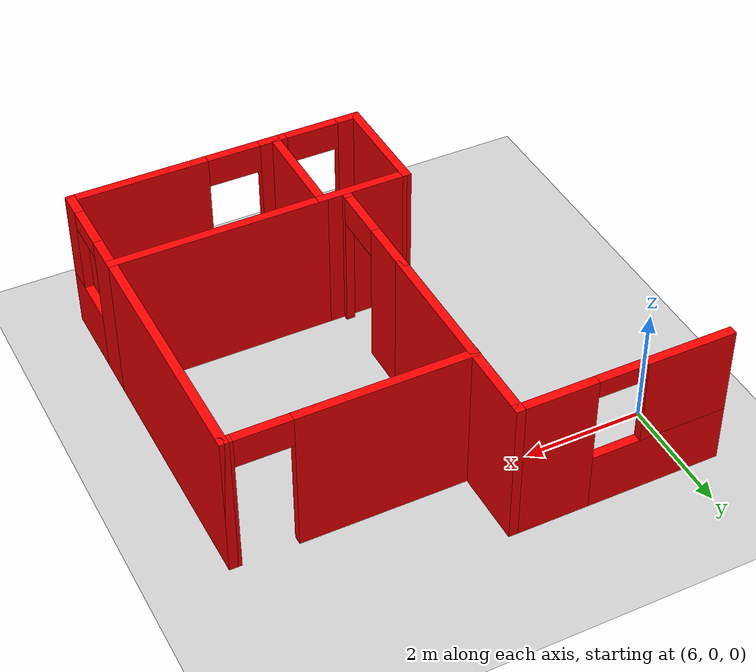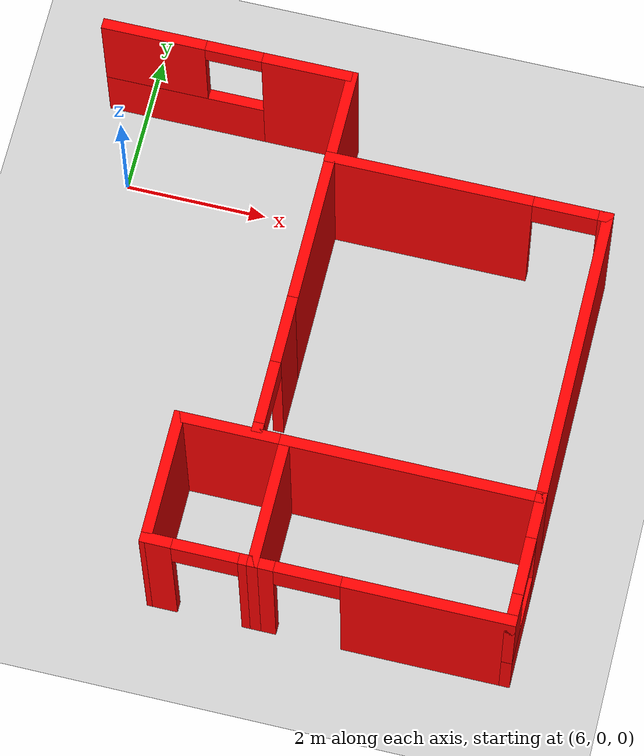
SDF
<sdf version="1.6">
 <world name="default">
  <model name="ground_plane">
   <static>1</static>
   <link name="link">
    <collision name="collision">
     <geometry><plane><normal>0 0 1</normal><size>100 100</size></plane></geometry>
     <surface><friction><ode><mu>100</mu><mu2>50</mu2></ode></friction></surface>
    </collision>
    <visual name="visual">
     <cast_shadows>0</cast_shadows>
     <geometry><plane><normal>0 0 1</normal><size>100 100</size></plane></geometry>
     <material>
      <script><uri>file://media/materials/scripts/gazebo.material</uri><name>Gazebo/Grey</name></script>
     </material>
    </visual>
   </link>
  </model>
  <model name="1floorHouse">
   <link name="Wall_323">
    <pose>4.71621 4.113 0 0 -0 1.5708</pose>
    <visual name="Wall_323_Visual">
     <pose>0 0 1.25 0 -0 0</pose>
     <geometry><box><size>3.6 0.15 2.5</size></box></geometry>
     <material>
      <script><uri>file://media/materials/scripts/gazebo.material</uri><name>Gazebo/Grey</name></script>
      <ambient>1 0 0 1</ambient>
      <diffuse>0.7 0.7 0.7 1</diffuse>
      <specular>0.01 0.01 0.01 1</specular>
      <emissive>0 0 0 1</emissive>
     </material>
    </visual>
    <collision name="Wall_323_Collision">
     <pose>0 0 1.25 0 -0 0</pose>
     <geometry><box><size>3.6 0.15 2.5</size></box></geometry>
     <surface>
      <friction>
       <ode><mu>1</mu><mu2>1</mu2><fdir1>0 0 0</fdir1><slip1>0</slip1><slip2>0</slip2></ode>
       <torsional>
        <coefficient>1</coefficient>
        <patch_radius>0</patch_radius>
        <surface_radius>0</surface_radius>
        <use_patch_radius>1</use_patch_radius>
        <ode><slip>0</slip></ode>
       </torsional>
      </friction>
      <bounce><restitution_coefficient>0</restitution_coefficient><threshold>1e+06</threshold></bounce>
      <contact>
       <collide_without_contact>0</collide_without_contact>
       <collide_without_contact_bitmask>1</collide_without_contact_bitmask>
       <collide_bitmask>1</collide_bitmask>
       <ode>
        <soft_cfm>0</soft_cfm>
        <soft_erp>0.2</soft_erp>
        <kp>1e+13</kp>
        <kd>1</kd>
        <max_vel>0.01</max_vel>
        <min_depth>0</min_depth>
       </ode>
       <bullet>
        <split_impulse>1</split_impulse>
        <split_impulse_penetration_threshold>-0.01</split_impulse_penetration_threshold>
        <soft_cfm>0</soft_cfm>
        <soft_erp>0.2</soft_erp>
        <kp>1e+13</kp>
        <kd>1</kd>
       </bullet>
      </contact>
     </surface>
    </collision>
   </link>
   <link name="Wall_324">
    <pose>2.9912 5.838 0 0 -0 3.14159</pose>
    <visual name="Wall_324_Visual_0">
     <pose>-1.13431 0 1.25 0 -0 0</pose>
     <geometry><box><size>1.33138 0.15 2.5</size></box></geometry>
     <material>
      <script><uri>file://media/materials/scripts/gazebo.material</uri><name>Gazebo/Grey</name></script>
      <ambient>1 0 0 1</ambient>
      <diffuse>0.7 0.7 0.7 1</diffuse>
      <specular>0.01 0.01 0.01 1</specular>
      <emissive>0 0 0 1</emissive>
     </material>
    </visual>
    <visual name="Wall_324_Visual_1">
     <pose>0.665691 0 0.5 0 -0 0</pose>
     <geometry><box><size>2.26862 0.15 1</size></box></geometry>
     <material>
      <script><uri>file://media/materials/scripts/gazebo.material</uri><name>Gazebo/Grey</name></script>
      <ambient>1 0 0 1</ambient>
      <diffuse>0.7 0.7 0.7 1</diffuse>
      <specular>0.01 0.01 0.01 1</specular>
      <emissive>0 0 0 1</emissive>
     </material>
    </visual>
    <visual name="Wall_324_Visual_3">
     <pose>-0.068619 0 2.35 0 -0 0</pose>
     <geometry><box><size>0.8 0.15 0.3</size></box></geometry>
     <material>
      <script><uri>file://media/materials/scripts/gazebo.material</uri><name>Gazebo/Grey</name></script>
      <ambient>1 0 0 1</ambient>
      <diffuse>0.7 0.7 0.7 1</diffuse>
      <specular>0.01 0.01 0.01 1</specular>
      <emissive>0 0 0 1</emissive>
     </material>
    </visual>
    <visual name="Wall_324_Visual_2">
     <pose>1.06569 0 1.75 0 -0 0</pose>
     <geometry><box><size>1.46862 0.15 1.5</size></box></geometry>
     <material>
      <script><uri>file://media/materials/scripts/gazebo.material</uri><name>Gazebo/Grey</name></script>
      <ambient>1 0 0 1</ambient>
      <diffuse>0.7 0.7 0.7 1</diffuse>
      <specular>0.01 0.01 0.01 1</specular>
      <emissive>0 0 0 1</emissive>
     </material>
    </visual>
    <collision name="Wall_324_Collision_0">
     <pose>-1.13431 0 1.25 0 -0 0</pose>
     <geometry><box><size>1.33138 0.15 2.5</size></box></geometry>
     <surface>
      <friction>
       <ode><mu>1</mu><mu2>1</mu2><fdir1>0 0 0</fdir1><slip1>0</slip1><slip2>0</slip2></ode>
       <torsional>
        <coefficient>1</coefficient>
        <patch_radius>0</patch_radius>
        <surface_radius>0</surface_radius>
        <use_patch_radius>1</use_patch_radius>
        <ode><slip>0</slip></ode>
       </torsional>
      </friction>
      <bounce><restitution_coefficient>0</restitution_coefficient><threshold>1e+06</threshold></bounce>
      <contact>
       <collide_without_contact>0</collide_without_contact>
       <collide_without_contact_bitmask>1</collide_without_contact_bitmask>
       <collide_bitmask>1</collide_bitmask>
       <ode>
        <soft_cfm>0</soft_cfm>
        <soft_erp>0.2</soft_erp>
        <kp>1e+13</kp>
        <kd>1</kd>
        <max_vel>0.01</max_vel>
        <min_depth>0</min_depth>
       </ode>
       <bullet>
        <split_impulse>1</split_impulse>
        <split_impulse_penetration_threshold>-0.01</split_impulse_penetration_threshold>
        <soft_cfm>0</soft_cfm>
        <soft_erp>0.2</soft_erp>
        <kp>1e+13</kp>
        <kd>1</kd>
       </bullet>
      </contact>
     </surface>
    </collision>
    <collision name="Wall_324_Collision_1">
     <pose>0.665691 0 0.5 0 -0 0</pose>
     <geometry><box><size>2.26862 0.15 1</size></box></geometry>
     <surface>
      <friction>
       <ode><mu>1</mu><mu2>1</mu2><fdir1>0 0 0</fdir1><slip1>0</slip1><slip2>0</slip2></ode>
       <torsional>
        <coefficient>1</coefficient>
        <patch_radius>0</patch_radius>
        <surface_radius>0</surface_radius>
        <use_patch_radius>1</use_patch_radius>
        <ode><slip>0</slip></ode>
       </torsional>
      </friction>
      <bounce><restitution_coefficient>0</restitution_coefficient><threshold>1e+06</threshold></bounce>
      <contact>
       <collide_without_contact>0</collide_without_contact>
       <collide_without_contact_bitmask>1</collide_without_contact_bitmask>
       <collide_bitmask>1</collide_bitmask>
       <ode>
        <soft_cfm>0</soft_cfm>
        <soft_erp>0.2</soft_erp>
        <kp>1e+13</kp>
        <kd>1</kd>
        <max_vel>0.01</max_vel>
        <min_depth>0</min_depth>
       </ode>
       <bullet>
        <split_impulse>1</split_impulse>
        <split_impulse_penetration_threshold>-0.01</split_impulse_penetration_threshold>
        <soft_cfm>0</soft_cfm>
        <soft_erp>0.2</soft_erp>
        <kp>1e+13</kp>
        <kd>1</kd>
       </bullet>
      </contact>
     </surface>
    </collision>
    <collision name="Wall_324_Collision_2">
     <pose>1.06569 0 1.75 0 -0 0</pose>
     <geometry><box><size>1.46862 0.15 1.5</size></box></geometry>
     <surface>
      <friction>
       <ode><mu>1</mu><mu2>1</mu2><fdir1>0 0 0</fdir1><slip1>0</slip1><slip2>0</slip2></ode>
       <torsional>
        <coefficient>1</coefficient>
        <patch_radius>0</patch_radius>
        <surface_radius>0</surface_radius>
        <use_patch_radius>1</use_patch_radius>
        <ode><slip>0</slip></ode>
       </torsional>
      </friction>
      <bounce><restitution_coefficient>0</restitution_coefficient><threshold>1e+06</threshold></bounce>
      <contact>
       <collide_without_contact>0</collide_without_contact>
       <collide_without_contact_bitmask>1</collide_without_contact_bitmask>
       <collide_bitmask>1</collide_bitmask>
       <ode>
        <soft_cfm>0</soft_cfm>
        <soft_erp>0.2</soft_erp>
        <kp>1e+13</kp>
        <kd>1</kd>
        <max_vel>0.01</max_vel>
        <min_depth>0</min_depth>
       </ode>
       <bullet>
        <split_impulse>1</split_impulse>
        <split_impulse_penetration_threshold>-0.01</split_impulse_penetration_threshold>
        <soft_cfm>0</soft_cfm>
        <soft_erp>0.2</soft_erp>
        <kp>1e+13</kp>
        <kd>1</kd>
       </bullet>
      </contact>
     </surface>
    </collision>
    <collision name="Wall_324_Collision_3">
     <pose>-0.068619 0 2.35 0 -0 0</pose>
     <geometry><box><size>0.8 0.15 0.3</size></box></geometry>
     <surface>
      <friction>
       <ode><mu>1</mu><mu2>1</mu2><fdir1>0 0 0</fdir1><slip1>0</slip1><slip2>0</slip2></ode>
       <torsional>
        <coefficient>1</coefficient>
        <patch_radius>0</patch_radius>
        <surface_radius>0</surface_radius>
        <use_patch_radius>1</use_patch_radius>
        <ode><slip>0</slip></ode>
       </torsional>
      </friction>
      <bounce><restitution_coefficient>0</restitution_coefficient><threshold>1e+06</threshold></bounce>
      <contact>
       <collide_without_contact>0</collide_without_contact>
       <collide_without_contact_bitmask>1</collide_without_contact_bitmask>
       <collide_bitmask>1</collide_bitmask>
       <ode>
        <soft_cfm>0</soft_cfm>
        <soft_erp>0.2</soft_erp>
        <kp>1e+13</kp>
        <kd>1</kd>
        <max_vel>0.01</max_vel>
        <min_depth>0</min_depth>
       </ode>
       <bullet>
        <split_impulse>1</split_impulse>
        <split_impulse_penetration_threshold>-0.01</split_impulse_penetration_threshold>
        <soft_cfm>0</soft_cfm>
        <soft_erp>0.2</soft_erp>
        <kp>1e+13</kp>
        <kd>1</kd>
       </bullet>
      </contact>
     </surface>
    </collision>
   </link>
   <link name="Wall_326">
    <pose>6.6372 4.588 0 0 -0 0</pose>
    <visual name="Wall_326_Visual_0">
     <pose>-0.551177 0 1.25 0 -0 0</pose>
     <geometry><box><size>2.89765 0.15 2.5</size></box></geometry>
     <material>
      <script><uri>file://media/materials/scripts/gazebo.material</uri><name>Gazebo/Grey</name></script>
      <ambient>1 0 0 1</ambient>
      <diffuse>0.7 0.7 0.7 1</diffuse>
      <specular>0.01 0.01 0.01 1</specular>
      <emissive>0 0 0 1</emissive>
     </material>
    </visual>
    <visual name="Wall_326_Visual_1">
     <pose>1.89882 0 1.25 0 -0 0</pose>
     <geometry><box><size>0.202354 0.15 2.5</size></box></geometry>
     <material>
      <script><uri>file://media/materials/scripts/gazebo.material</uri><name>Gazebo/Grey</name></script>
      <ambient>1 0 0 1</ambient>
      <diffuse>0.7 0.7 0.7 1</diffuse>
      <specular>0.01 0.01 0.01 1</specular>
      <emissive>0 0 0 1</emissive>
     </material>
    </visual>
    <visual name="Wall_326_Visual_2">
     <pose>1.34765 0 2.25 0 -0 0</pose>
     <geometry><box><size>0.9 0.15 0.5</size></box></geometry>
     <material>
      <script><uri>file://media/materials/scripts/gazebo.material</uri><name>Gazebo/Grey</name></script>
      <ambient>1 0 0 1</ambient>
      <diffuse>0.7 0.7 0.7 1</diffuse>
      <specular>0.01 0.01 0.01 1</specular>
      <emissive>0 0 0 1</emissive>
     </material>
    </visual>
    <collision name="Wall_326_Collision_0">
     <pose>-0.551177 0 1.25 0 -0 0</pose>
     <geometry><box><size>2.89765 0.15 2.5</size></box></geometry>
     <surface>
      <friction>
       <ode><mu>1</mu><mu2>1</mu2><fdir1>0 0 0</fdir1><slip1>0</slip1><slip2>0</slip2></ode>
       <torsional>
        <coefficient>1</coefficient>
        <patch_radius>0</patch_radius>
        <surface_radius>0</surface_radius>
        <use_patch_radius>1</use_patch_radius>
        <ode><slip>0</slip></ode>
       </torsional>
      </friction>
      <bounce><restitution_coefficient>0</restitution_coefficient><threshold>1e+06</threshold></bounce>
      <contact>
       <collide_without_contact>0</collide_without_contact>
       <collide_without_contact_bitmask>1</collide_without_contact_bitmask>
       <collide_bitmask>1</collide_bitmask>
       <ode>
        <soft_cfm>0</soft_cfm>
        <soft_erp>0.2</soft_erp>
        <kp>1e+13</kp>
        <kd>1</kd>
        <max_vel>0.01</max_vel>
        <min_depth>0</min_depth>
       </ode>
       <bullet>
        <split_impulse>1</split_impulse>
        <split_impulse_penetration_threshold>-0.01</split_impulse_penetration_threshold>
        <soft_cfm>0</soft_cfm>
        <soft_erp>0.2</soft_erp>
        <kp>1e+13</kp>
        <kd>1</kd>
       </bullet>
      </contact>
     </surface>
    </collision>
    <collision name="Wall_326_Collision_2">
     <pose>1.34765 0 2.25 0 -0 0</pose>
     <geometry><box><size>0.9 0.15 0.5</size></box></geometry>
     <surface>
      <friction>
       <ode><mu>1</mu><mu2>1</mu2><fdir1>0 0 0</fdir1><slip1>0</slip1><slip2>0</slip2></ode>
       <torsional>
        <coefficient>1</coefficient>
        <patch_radius>0</patch_radius>
        <surface_radius>0</surface_radius>
        <use_patch_radius>1</use_patch_radius>
        <ode><slip>0</slip></ode>
       </torsional>
      </friction>
      <bounce><restitution_coefficient>0</restitution_coefficient><threshold>1e+06</threshold></bounce>
      <contact>
       <collide_without_contact>0</collide_without_contact>
       <collide_without_contact_bitmask>1</collide_without_contact_bitmask>
       <collide_bitmask>1</collide_bitmask>
       <ode>
        <soft_cfm>0</soft_cfm>
        <soft_erp>0.2</soft_erp>
        <kp>1e+13</kp>
        <kd>1</kd>
        <max_vel>0.01</max_vel>
        <min_depth>0</min_depth>
       </ode>
       <bullet>
        <split_impulse>1</split_impulse>
        <split_impulse_penetration_threshold>-0.01</split_impulse_penetration_threshold>
        <soft_cfm>0</soft_cfm>
        <soft_erp>0.2</soft_erp>
        <kp>1e+13</kp>
        <kd>1</kd>
       </bullet>
      </contact>
     </surface>
    </collision>
    <collision name="Wall_326_Collision_1">
     <pose>1.89882 0 1.25 0 -0 0</pose>
     <geometry><box><size>0.202354 0.15 2.5</size></box></geometry>
     <surface>
      <friction>
       <ode><mu>1</mu><mu2>1</mu2><fdir1>0 0 0</fdir1><slip1>0</slip1><slip2>0</slip2></ode>
       <torsional>
        <coefficient>1</coefficient>
        <patch_radius>0</patch_radius>
        <surface_radius>0</surface_radius>
        <use_patch_radius>1</use_patch_radius>
        <ode><slip>0</slip></ode>
       </torsional>
      </friction>
      <bounce><restitution_coefficient>0</restitution_coefficient><threshold>1e+06</threshold></bounce>
      <contact>
       <collide_without_contact>0</collide_without_contact>
       <collide_without_contact_bitmask>1</collide_without_contact_bitmask>
       <collide_bitmask>1</collide_bitmask>
       <ode>
        <soft_cfm>0</soft_cfm>
        <soft_erp>0.2</soft_erp>
        <kp>1e+13</kp>
        <kd>1</kd>
        <max_vel>0.01</max_vel>
        <min_depth>0</min_depth>
       </ode>
       <bullet>
        <split_impulse>1</split_impulse>
        <split_impulse_penetration_threshold>-0.01</split_impulse_penetration_threshold>
        <soft_cfm>0</soft_cfm>
        <soft_erp>0.2</soft_erp>
        <kp>1e+13</kp>
        <kd>1</kd>
       </bullet>
      </contact>
     </surface>
    </collision>
   </link>
   <link name="Wall_327">
    <pose>8.56221 2.513 0 0 0 -1.5708</pose>
    <visual name="Wall_327_Visual">
     <pose>0 0 1.25 0 -0 0</pose>
     <geometry><box><size>4.3 0.15 2.5</size></box></geometry>
     <material>
      <script><uri>file://media/materials/scripts/gazebo.material</uri><name>Gazebo/Grey</name></script>
      <ambient>1 0 0 1</ambient>
      <diffuse>0.7 0.7 0.7 1</diffuse>
      <specular>0.01 0.01 0.01 1</specular>
      <emissive>0 0 0 1</emissive>
     </material>
    </visual>
    <collision name="Wall_327_Collision">
     <pose>0 0 1.25 0 -0 0</pose>
     <geometry><box><size>4.3 0.15 2.5</size></box></geometry>
     <surface>
      <friction>
       <ode><mu>1</mu><mu2>1</mu2><fdir1>0 0 0</fdir1><slip1>0</slip1><slip2>0</slip2></ode>
       <torsional>
        <coefficient>1</coefficient>
        <patch_radius>0</patch_radius>
        <surface_radius>0</surface_radius>
        <use_patch_radius>1</use_patch_radius>
        <ode><slip>0</slip></ode>
       </torsional>
      </friction>
      <bounce><restitution_coefficient>0</restitution_coefficient><threshold>1e+06</threshold></bounce>
      <contact>
       <collide_without_contact>0</collide_without_contact>
       <collide_without_contact_bitmask>1</collide_without_contact_bitmask>
       <collide_bitmask>1</collide_bitmask>
       <ode>
        <soft_cfm>0</soft_cfm>
        <soft_erp>0.2</soft_erp>
        <kp>1e+13</kp>
        <kd>1</kd>
        <max_vel>0.01</max_vel>
        <min_depth>0</min_depth>
       </ode>
       <bullet>
        <split_impulse>1</split_impulse>
        <split_impulse_penetration_threshold>-0.01</split_impulse_penetration_threshold>
        <soft_cfm>0</soft_cfm>
        <soft_erp>0.2</soft_erp>
        <kp>1e+13</kp>
        <kd>1</kd>
       </bullet>
      </contact>
     </surface>
    </collision>
   </link>
   <link name="Wall_328">
    <pose>6.8372 0.437996 0 0 -0 3.14159</pose>
    <visual name="Wall_328_Visual">
     <pose>0 0 1.25 0 -0 0</pose>
     <geometry><box><size>3.6 0.15 2.5</size></box></geometry>
     <material>
      <script><uri>file://media/materials/scripts/gazebo.material</uri><name>Gazebo/Grey</name></script>
      <ambient>1 0 0 1</ambient>
      <diffuse>0.7 0.7 0.7 1</diffuse>
      <specular>0.01 0.01 0.01 1</specular>
      <emissive>0 0 0 1</emissive>
     </material>
    </visual>
    <collision name="Wall_328_Collision">
     <pose>0 0 1.25 0 -0 0</pose>
     <geometry><box><size>3.6 0.15 2.5</size></box></geometry>
     <surface>
      <friction>
       <ode><mu>1</mu><mu2>1</mu2><fdir1>0 0 0</fdir1><slip1>0</slip1><slip2>0</slip2></ode>
       <torsional>
        <coefficient>1</coefficient>
        <patch_radius>0</patch_radius>
        <surface_radius>0</surface_radius>
        <use_patch_radius>1</use_patch_radius>
        <ode><slip>0</slip></ode>
       </torsional>
      </friction>
      <bounce><restitution_coefficient>0</restitution_coefficient><threshold>1e+06</threshold></bounce>
      <contact>
       <collide_without_contact>0</collide_without_contact>
       <collide_without_contact_bitmask>1</collide_without_contact_bitmask>
       <collide_bitmask>1</collide_bitmask>
       <ode>
        <soft_cfm>0</soft_cfm>
        <soft_erp>0.2</soft_erp>
        <kp>1e+13</kp>
        <kd>1</kd>
        <max_vel>0.01</max_vel>
        <min_depth>0</min_depth>
       </ode>
       <bullet>
        <split_impulse>1</split_impulse>
        <split_impulse_penetration_threshold>-0.01</split_impulse_penetration_threshold>
        <soft_cfm>0</soft_cfm>
        <soft_erp>0.2</soft_erp>
        <kp>1e+13</kp>
        <kd>1</kd>
       </bullet>
      </contact>
     </surface>
    </collision>
   </link>
   <link name="Wall_329">
    <pose>4.3872 0.437996 0 0 -0 3.14159</pose>
    <visual name="Wall_329_Visual">
     <pose>0 0 1.25 0 -0 0</pose>
     <geometry><box><size>1.6 0.15 2.5</size></box></geometry>
     <material>
      <script><uri>file://media/materials/scripts/gazebo.material</uri><name>Gazebo/Grey</name></script>
      <ambient>1 0 0 1</ambient>
      <diffuse>0.7 0.7 0.7 1</diffuse>
      <specular>0.01 0.01 0.01 1</specular>
      <emissive>0 0 0 1</emissive>
     </material>
    </visual>
    <collision name="Wall_329_Collision">
     <pose>0 0 1.25 0 -0 0</pose>
     <geometry><box><size>1.6 0.15 2.5</size></box></geometry>
     <surface>
      <friction>
       <ode><mu>1</mu><mu2>1</mu2><fdir1>0 0 0</fdir1><slip1>0</slip1><slip2>0</slip2></ode>
       <torsional>
        <coefficient>1</coefficient>
        <patch_radius>0</patch_radius>
        <surface_radius>0</surface_radius>
        <use_patch_radius>1</use_patch_radius>
        <ode><slip>0</slip></ode>
       </torsional>
      </friction>
      <bounce><restitution_coefficient>0</restitution_coefficient><threshold>1e+06</threshold></bounce>
      <contact>
       <collide_without_contact>0</collide_without_contact>
       <collide_without_contact_bitmask>1</collide_without_contact_bitmask>
       <collide_bitmask>1</collide_bitmask>
       <ode>
        <soft_cfm>0</soft_cfm>
        <soft_erp>0.2</soft_erp>
        <kp>1e+13</kp>
        <kd>1</kd>
        <max_vel>0.01</max_vel>
        <min_depth>0</min_depth>
       </ode>
       <bullet>
        <split_impulse>1</split_impulse>
        <split_impulse_penetration_threshold>-0.01</split_impulse_penetration_threshold>
        <soft_cfm>0</soft_cfm>
        <soft_erp>0.2</soft_erp>
        <kp>1e+13</kp>
        <kd>1</kd>
       </bullet>
      </contact>
     </surface>
    </collision>
   </link>
   <link name="Wall_330">
    <pose>4.71621 1.463 0 0 0 -1.5708</pose>
    <visual name="Wall_330_Visual_0">
     <pose>-0.517454 0 1.25 0 -0 0</pose>
     <geometry><box><size>0.965091 0.15 2.5</size></box></geometry>
     <material>
      <script><uri>file://media/materials/scripts/gazebo.material</uri><name>Gazebo/Grey</name></script>
      <ambient>1 0 0 1</ambient>
      <diffuse>0.7 0.7 0.7 1</diffuse>
      <specular>0.01 0.01 0.01 1</specular>
      <emissive>0 0 0 1</emissive>
     </material>
    </visual>
    <visual name="Wall_330_Visual_1">
     <pose>0.932546 0 1.25 0 -0 0</pose>
     <geometry><box><size>0.134909 0.15 2.5</size></box></geometry>
     <material>
      <script><uri>file://media/materials/scripts/gazebo.material</uri><name>Gazebo/Grey</name></script>
      <ambient>1 0 0 1</ambient>
      <diffuse>0.7 0.7 0.7 1</diffuse>
      <specular>0.01 0.01 0.01 1</specular>
      <emissive>0 0 0 1</emissive>
     </material>
    </visual>
    <visual name="Wall_330_Visual_2">
     <pose>0.415091 0 2.25 0 -0 0</pose>
     <geometry><box><size>0.9 0.15 0.5</size></box></geometry>
     <material>
      <script><uri>file://media/materials/scripts/gazebo.material</uri><name>Gazebo/Grey</name></script>
      <ambient>1 0 0 1</ambient>
      <diffuse>0.7 0.7 0.7 1</diffuse>
      <specular>0.01 0.01 0.01 1</specular>
      <emissive>0 0 0 1</emissive>
     </material>
    </visual>
    <collision name="Wall_330_Collision_1">
     <pose>0.932546 0 1.25 0 -0 0</pose>
     <geometry><box><size>0.134909 0.15 2.5</size></box></geometry>
     <surface>
      <friction>
       <ode><mu>1</mu><mu2>1</mu2><fdir1>0 0 0</fdir1><slip1>0</slip1><slip2>0</slip2></ode>
       <torsional>
        <coefficient>1</coefficient>
        <patch_radius>0</patch_radius>
        <surface_radius>0</surface_radius>
        <use_patch_radius>1</use_patch_radius>
        <ode><slip>0</slip></ode>
       </torsional>
      </friction>
      <bounce><restitution_coefficient>0</restitution_coefficient><threshold>1e+06</threshold></bounce>
      <contact>
       <collide_without_contact>0</collide_without_contact>
       <collide_without_contact_bitmask>1</collide_without_contact_bitmask>
       <collide_bitmask>1</collide_bitmask>
       <ode>
        <soft_cfm>0</soft_cfm>
        <soft_erp>0.2</soft_erp>
        <kp>1e+13</kp>
        <kd>1</kd>
        <max_vel>0.01</max_vel>
        <min_depth>0</min_depth>
       </ode>
       <bullet>
        <split_impulse>1</split_impulse>
        <split_impulse_penetration_threshold>-0.01</split_impulse_penetration_threshold>
        <soft_cfm>0</soft_cfm>
        <soft_erp>0.2</soft_erp>
        <kp>1e+13</kp>
        <kd>1</kd>
       </bullet>
      </contact>
     </surface>
    </collision>
    <collision name="Wall_330_Collision_0">
     <pose>-0.517454 0 1.25 0 -0 0</pose>
     <geometry><box><size>0.965091 0.15 2.5</size></box></geometry>
     <surface>
      <friction>
       <ode><mu>1</mu><mu2>1</mu2><fdir1>0 0 0</fdir1><slip1>0</slip1><slip2>0</slip2></ode>
       <torsional>
        <coefficient>1</coefficient>
        <patch_radius>0</patch_radius>
        <surface_radius>0</surface_radius>
        <use_patch_radius>1</use_patch_radius>
        <ode><slip>0</slip></ode>
       </torsional>
      </friction>
      <bounce><restitution_coefficient>0</restitution_coefficient><threshold>1e+06</threshold></bounce>
      <contact>
       <collide_without_contact>0</collide_without_contact>
       <collide_without_contact_bitmask>1</collide_without_contact_bitmask>
       <collide_bitmask>1</collide_bitmask>
       <ode>
        <soft_cfm>0</soft_cfm>
        <soft_erp>0.2</soft_erp>
        <kp>1e+13</kp>
        <kd>1</kd>
        <max_vel>0.01</max_vel>
        <min_depth>0</min_depth>
       </ode>
       <bullet>
        <split_impulse>1</split_impulse>
        <split_impulse_penetration_threshold>-0.01</split_impulse_penetration_threshold>
        <soft_cfm>0</soft_cfm>
        <soft_erp>0.2</soft_erp>
        <kp>1e+13</kp>
        <kd>1</kd>
       </bullet>
      </contact>
     </surface>
    </collision>
    <collision name="Wall_330_Collision_2">
     <pose>0.415091 0 2.25 0 -0 0</pose>
     <geometry><box><size>0.9 0.15 0.5</size></box></geometry>
     <surface>
      <friction>
       <ode><mu>1</mu><mu2>1</mu2><fdir1>0 0 0</fdir1><slip1>0</slip1><slip2>0</slip2></ode>
       <torsional>
        <coefficient>1</coefficient>
        <patch_radius>0</patch_radius>
        <surface_radius>0</surface_radius>
        <use_patch_radius>1</use_patch_radius>
        <ode><slip>0</slip></ode>
       </torsional>
      </friction>
      <bounce><restitution_coefficient>0</restitution_coefficient><threshold>1e+06</threshold></bounce>
      <contact>
       <collide_without_contact>0</collide_without_contact>
       <collide_without_contact_bitmask>1</collide_without_contact_bitmask>
       <collide_bitmask>1</collide_bitmask>
       <ode>
        <soft_cfm>0</soft_cfm>
        <soft_erp>0.2</soft_erp>
        <kp>1e+13</kp>
        <kd>1</kd>
        <max_vel>0.01</max_vel>
        <min_depth>0</min_depth>
       </ode>
       <bullet>
        <split_impulse>1</split_impulse>
        <split_impulse_penetration_threshold>-0.01</split_impulse_penetration_threshold>
        <soft_cfm>0</soft_cfm>
        <soft_erp>0.2</soft_erp>
        <kp>1e+13</kp>
        <kd>1</kd>
       </bullet>
      </contact>
     </surface>
    </collision>
   </link>
   <link name="Wall_331">
    <pose>8.56221 -0.437004 0 0 0 -1.5708</pose>
    <visual name="Wall_331_Visual_0">
     <pose>-0.622308 0 1.25 0 -0 0</pose>
     <geometry><box><size>0.655384 0.15 2.5</size></box></geometry>
     <material>
      <script><uri>file://media/materials/scripts/gazebo.material</uri><name>Gazebo/Grey</name></script>
      <ambient>1 0 0 1</ambient>
      <diffuse>0.7 0.7 0.7 1</diffuse>
      <specular>0.01 0.01 0.01 1</specular>
      <emissive>0 0 0 1</emissive>
     </material>
    </visual>
    <visual name="Wall_331_Visual_1">
     <pose>0.327692 0 0.5 0 -0 0</pose>
     <geometry><box><size>1.24462 0.15 1</size></box></geometry>
     <material>
      <script><uri>file://media/materials/scripts/gazebo.material</uri><name>Gazebo/Grey</name></script>
      <ambient>1 0 0 1</ambient>
      <diffuse>0.7 0.7 0.7 1</diffuse>
      <specular>0.01 0.01 0.01 1</specular>
      <emissive>0 0 0 1</emissive>
     </material>
    </visual>
    <visual name="Wall_331_Visual_2">
     <pose>0.727692 0 1.75 0 -0 0</pose>
     <geometry><box><size>0.444616 0.15 1.5</size></box></geometry>
     <material>
      <script><uri>file://media/materials/scripts/gazebo.material</uri><name>Gazebo/Grey</name></script>
      <ambient>1 0 0 1</ambient>
      <diffuse>0.7 0.7 0.7 1</diffuse>
      <specular>0.01 0.01 0.01 1</specular>
      <emissive>0 0 0 1</emissive>
     </material>
    </visual>
    <visual name="Wall_331_Visual_3">
     <pose>0.105384 0 2.35 0 -0 0</pose>
     <geometry><box><size>0.8 0.15 0.3</size></box></geometry>
     <material>
      <script><uri>file://media/materials/scripts/gazebo.material</uri><name>Gazebo/Grey</name></script>
      <ambient>1 0 0 1</ambient>
      <diffuse>0.7 0.7 0.7 1</diffuse>
      <specular>0.01 0.01 0.01 1</specular>
      <emissive>0 0 0 1</emissive>
     </material>
    </visual>
    <collision name="Wall_331_Collision_0">
     <pose>-0.622308 0 1.25 0 -0 0</pose>
     <geometry><box><size>0.655384 0.15 2.5</size></box></geometry>
     <surface>
      <friction>
       <ode><mu>1</mu><mu2>1</mu2><fdir1>0 0 0</fdir1><slip1>0</slip1><slip2>0</slip2></ode>
       <torsional>
        <coefficient>1</coefficient>
        <patch_radius>0</patch_radius>
        <surface_radius>0</surface_radius>
        <use_patch_radius>1</use_patch_radius>
        <ode><slip>0</slip></ode>
       </torsional>
      </friction>
      <bounce><restitution_coefficient>0</restitution_coefficient><threshold>1e+06</threshold></bounce>
      <contact>
       <collide_without_contact>0</collide_without_contact>
       <collide_without_contact_bitmask>1</collide_without_contact_bitmask>
       <collide_bitmask>1</collide_bitmask>
       <ode>
        <soft_cfm>0</soft_cfm>
        <soft_erp>0.2</soft_erp>
        <kp>1e+13</kp>
        <kd>1</kd>
        <max_vel>0.01</max_vel>
        <min_depth>0</min_depth>
       </ode>
       <bullet>
        <split_impulse>1</split_impulse>
        <split_impulse_penetration_threshold>-0.01</split_impulse_penetration_threshold>
        <soft_cfm>0</soft_cfm>
        <soft_erp>0.2</soft_erp>
        <kp>1e+13</kp>
        <kd>1</kd>
       </bullet>
      </contact>
     </surface>
    </collision>
    <collision name="Wall_331_Collision_1">
     <pose>0.327692 0 0.5 0 -0 0</pose>
     <geometry><box><size>1.24462 0.15 1</size></box></geometry>
     <surface>
      <friction>
       <ode><mu>1</mu><mu2>1</mu2><fdir1>0 0 0</fdir1><slip1>0</slip1><slip2>0</slip2></ode>
       <torsional>
        <coefficient>1</coefficient>
        <patch_radius>0</patch_radius>
        <surface_radius>0</surface_radius>
        <use_patch_radius>1</use_patch_radius>
        <ode><slip>0</slip></ode>
       </torsional>
      </friction>
      <bounce><restitution_coefficient>0</restitution_coefficient><threshold>1e+06</threshold></bounce>
      <contact>
       <collide_without_contact>0</collide_without_contact>
       <collide_without_contact_bitmask>1</collide_without_contact_bitmask>
       <collide_bitmask>1</collide_bitmask>
       <ode>
        <soft_cfm>0</soft_cfm>
        <soft_erp>0.2</soft_erp>
        <kp>1e+13</kp>
        <kd>1</kd>
        <max_vel>0.01</max_vel>
        <min_depth>0</min_depth>
       </ode>
       <bullet>
        <split_impulse>1</split_impulse>
        <split_impulse_penetration_threshold>-0.01</split_impulse_penetration_threshold>
        <soft_cfm>0</soft_cfm>
        <soft_erp>0.2</soft_erp>
        <kp>1e+13</kp>
        <kd>1</kd>
       </bullet>
      </contact>
     </surface>
    </collision>
    <collision name="Wall_331_Collision_2">
     <pose>0.727692 0 1.75 0 -0 0</pose>
     <geometry><box><size>0.444616 0.15 1.5</size></box></geometry>
     <surface>
      <friction>
       <ode><mu>1</mu><mu2>1</mu2><fdir1>0 0 0</fdir1><slip1>0</slip1><slip2>0</slip2></ode>
       <torsional>
        <coefficient>1</coefficient>
        <patch_radius>0</patch_radius>
        <surface_radius>0</surface_radius>
        <use_patch_radius>1</use_patch_radius>
        <ode><slip>0</slip></ode>
       </torsional>
      </friction>
      <bounce><restitution_coefficient>0</restitution_coefficient><threshold>1e+06</threshold></bounce>
      <contact>
       <collide_without_contact>0</collide_without_contact>
       <collide_without_contact_bitmask>1</collide_without_contact_bitmask>
       <collide_bitmask>1</collide_bitmask>
       <ode>
        <soft_cfm>0</soft_cfm>
        <soft_erp>0.2</soft_erp>
        <kp>1e+13</kp>
        <kd>1</kd>
        <max_vel>0.01</max_vel>
        <min_depth>0</min_depth>
       </ode>
       <bullet>
        <split_impulse>1</split_impulse>
        <split_impulse_penetration_threshold>-0.01</split_impulse_penetration_threshold>
        <soft_cfm>0</soft_cfm>
        <soft_erp>0.2</soft_erp>
        <kp>1e+13</kp>
        <kd>1</kd>
       </bullet>
      </contact>
     </surface>
    </collision>
    <collision name="Wall_331_Collision_3">
     <pose>0.105384 0 2.35 0 -0 0</pose>
     <geometry><box><size>0.8 0.15 0.3</size></box></geometry>
     <surface>
      <friction>
       <ode><mu>1</mu><mu2>1</mu2><fdir1>0 0 0</fdir1><slip1>0</slip1><slip2>0</slip2></ode>
       <torsional>
        <coefficient>1</coefficient>
        <patch_radius>0</patch_radius>
        <surface_radius>0</surface_radius>
        <use_patch_radius>1</use_patch_radius>
        <ode><slip>0</slip></ode>
       </torsional>
      </friction>
      <bounce><restitution_coefficient>0</restitution_coefficient><threshold>1e+06</threshold></bounce>
      <contact>
       <collide_without_contact>0</collide_without_contact>
       <collide_without_contact_bitmask>1</collide_without_contact_bitmask>
       <collide_bitmask>1</collide_bitmask>
       <ode>
        <soft_cfm>0</soft_cfm>
        <soft_erp>0.2</soft_erp>
        <kp>1e+13</kp>
        <kd>1</kd>
        <max_vel>0.01</max_vel>
        <min_depth>0</min_depth>
       </ode>
       <bullet>
        <split_impulse>1</split_impulse>
        <split_impulse_penetration_threshold>-0.01</split_impulse_penetration_threshold>
        <soft_cfm>0</soft_cfm>
        <soft_erp>0.2</soft_erp>
        <kp>1e+13</kp>
        <kd>1</kd>
       </bullet>
      </contact>
     </surface>
    </collision>
   </link>
   <link name="Wall_332">
    <pose>6.8372 -1.312 0 0 -0 3.14159</pose>
    <visual name="Wall_332_Visual_0">
     <pose>-0.629591 0 1.25 0 -0 0</pose>
     <geometry><box><size>2.34082 0.15 2.5</size></box></geometry>
     <material>
      <script><uri>file://media/materials/scripts/gazebo.material</uri><name>Gazebo/Grey</name></script>
      <ambient>1 0 0 1</ambient>
      <diffuse>0.7 0.7 0.7 1</diffuse>
      <specular>0.01 0.01 0.01 1</specular>
      <emissive>0 0 0 1</emissive>
     </material>
    </visual>
    <visual name="Wall_332_Visual_1">
     <pose>1.62041 0 1.25 0 -0 0</pose>
     <geometry><box><size>0.359182 0.15 2.5</size></box></geometry>
     <material>
      <script><uri>file://media/materials/scripts/gazebo.material</uri><name>Gazebo/Grey</name></script>
      <ambient>1 0 0 1</ambient>
      <diffuse>0.7 0.7 0.7 1</diffuse>
      <specular>0.01 0.01 0.01 1</specular>
      <emissive>0 0 0 1</emissive>
     </material>
    </visual>
    <visual name="Wall_332_Visual_2">
     <pose>0.990818 0 2.25 0 -0 0</pose>
     <geometry><box><size>0.9 0.15 0.5</size></box></geometry>
     <material>
      <script><uri>file://media/materials/scripts/gazebo.material</uri><name>Gazebo/Grey</name></script>
      <ambient>1 0 0 1</ambient>
      <diffuse>0.7 0.7 0.7 1</diffuse>
      <specular>0.01 0.01 0.01 1</specular>
      <emissive>0 0 0 1</emissive>
     </material>
    </visual>
    <collision name="Wall_332_Collision_0">
     <pose>-0.629591 0 1.25 0 -0 0</pose>
     <geometry><box><size>2.34082 0.15 2.5</size></box></geometry>
     <surface>
      <friction>
       <ode><mu>1</mu><mu2>1</mu2><fdir1>0 0 0</fdir1><slip1>0</slip1><slip2>0</slip2></ode>
       <torsional>
        <coefficient>1</coefficient>
        <patch_radius>0</patch_radius>
        <surface_radius>0</surface_radius>
        <use_patch_radius>1</use_patch_radius>
        <ode><slip>0</slip></ode>
       </torsional>
      </friction>
      <bounce><restitution_coefficient>0</restitution_coefficient><threshold>1e+06</threshold></bounce>
      <contact>
       <collide_without_contact>0</collide_without_contact>
       <collide_without_contact_bitmask>1</collide_without_contact_bitmask>
       <collide_bitmask>1</collide_bitmask>
       <ode>
        <soft_cfm>0</soft_cfm>
        <soft_erp>0.2</soft_erp>
        <kp>1e+13</kp>
        <kd>1</kd>
        <max_vel>0.01</max_vel>
        <min_depth>0</min_depth>
       </ode>
       <bullet>
        <split_impulse>1</split_impulse>
        <split_impulse_penetration_threshold>-0.01</split_impulse_penetration_threshold>
        <soft_cfm>0</soft_cfm>
        <soft_erp>0.2</soft_erp>
        <kp>1e+13</kp>
        <kd>1</kd>
       </bullet>
      </contact>
     </surface>
    </collision>
    <collision name="Wall_332_Collision_1">
     <pose>1.62041 0 1.25 0 -0 0</pose>
     <geometry><box><size>0.359182 0.15 2.5</size></box></geometry>
     <surface>
      <friction>
       <ode><mu>1</mu><mu2>1</mu2><fdir1>0 0 0</fdir1><slip1>0</slip1><slip2>0</slip2></ode>
       <torsional>
        <coefficient>1</coefficient>
        <patch_radius>0</patch_radius>
        <surface_radius>0</surface_radius>
        <use_patch_radius>1</use_patch_radius>
        <ode><slip>0</slip></ode>
       </torsional>
      </friction>
      <bounce><restitution_coefficient>0</restitution_coefficient><threshold>1e+06</threshold></bounce>
      <contact>
       <collide_without_contact>0</collide_without_contact>
       <collide_without_contact_bitmask>1</collide_without_contact_bitmask>
       <collide_bitmask>1</collide_bitmask>
       <ode>
        <soft_cfm>0</soft_cfm>
        <soft_erp>0.2</soft_erp>
        <kp>1e+13</kp>
        <kd>1</kd>
        <max_vel>0.01</max_vel>
        <min_depth>0</min_depth>
       </ode>
       <bullet>
        <split_impulse>1</split_impulse>
        <split_impulse_penetration_threshold>-0.01</split_impulse_penetration_threshold>
        <soft_cfm>0</soft_cfm>
        <soft_erp>0.2</soft_erp>
        <kp>1e+13</kp>
        <kd>1</kd>
       </bullet>
      </contact>
     </surface>
    </collision>
    <collision name="Wall_332_Collision_2">
     <pose>0.990818 0 2.25 0 -0 0</pose>
     <geometry><box><size>0.9 0.15 0.5</size></box></geometry>
     <surface>
      <friction>
       <ode><mu>1</mu><mu2>1</mu2><fdir1>0 0 0</fdir1><slip1>0</slip1><slip2>0</slip2></ode>
       <torsional>
        <coefficient>1</coefficient>
        <patch_radius>0</patch_radius>
        <surface_radius>0</surface_radius>
        <use_patch_radius>1</use_patch_radius>
        <ode><slip>0</slip></ode>
       </torsional>
      </friction>
      <bounce><restitution_coefficient>0</restitution_coefficient><threshold>1e+06</threshold></bounce>
      <contact>
       <collide_without_contact>0</collide_without_contact>
       <collide_without_contact_bitmask>1</collide_without_contact_bitmask>
       <collide_bitmask>1</collide_bitmask>
       <ode>
        <soft_cfm>0</soft_cfm>
        <soft_erp>0.2</soft_erp>
        <kp>1e+13</kp>
        <kd>1</kd>
        <max_vel>0.01</max_vel>
        <min_depth>0</min_depth>
       </ode>
       <bullet>
        <split_impulse>1</split_impulse>
        <split_impulse_penetration_threshold>-0.01</split_impulse_penetration_threshold>
        <soft_cfm>0</soft_cfm>
        <soft_erp>0.2</soft_erp>
        <kp>1e+13</kp>
        <kd>1</kd>
       </bullet>
      </contact>
     </surface>
    </collision>
   </link>
   <link name="Wall_333">
    <pose>5.11221 -0.437004 0 0 -0 1.5708</pose>
    <visual name="Wall_333_Visual">
     <pose>0 0 1.25 0 -0 0</pose>
     <geometry><box><size>1.9 0.15 2.5</size></box></geometry>
     <material>
      <script><uri>file://media/materials/scripts/gazebo.material</uri><name>Gazebo/Grey</name></script>
      <ambient>1 0 0 1</ambient>
      <diffuse>0.7 0.7 0.7 1</diffuse>
      <specular>0.01 0.01 0.01 1</specular>
      <emissive>0 0 0 1</emissive>
     </material>
    </visual>
    <collision name="Wall_333_Collision">
     <pose>0 0 1.25 0 -0 0</pose>
     <geometry><box><size>1.9 0.15 2.5</size></box></geometry>
     <surface>
      <friction>
       <ode><mu>1</mu><mu2>1</mu2><fdir1>0 0 0</fdir1><slip1>0</slip1><slip2>0</slip2></ode>
       <torsional>
        <coefficient>1</coefficient>
        <patch_radius>0</patch_radius>
        <surface_radius>0</surface_radius>
        <use_patch_radius>1</use_patch_radius>
        <ode><slip>0</slip></ode>
       </torsional>
      </friction>
      <bounce><restitution_coefficient>0</restitution_coefficient><threshold>1e+06</threshold></bounce>
      <contact>
       <collide_without_contact>0</collide_without_contact>
       <collide_without_contact_bitmask>1</collide_without_contact_bitmask>
       <collide_bitmask>1</collide_bitmask>
       <ode>
        <soft_cfm>0</soft_cfm>
        <soft_erp>0.2</soft_erp>
        <kp>1e+13</kp>
        <kd>1</kd>
        <max_vel>0.01</max_vel>
        <min_depth>0</min_depth>
       </ode>
       <bullet>
        <split_impulse>1</split_impulse>
        <split_impulse_penetration_threshold>-0.01</split_impulse_penetration_threshold>
        <soft_cfm>0</soft_cfm>
        <soft_erp>0.2</soft_erp>
        <kp>1e+13</kp>
        <kd>1</kd>
       </bullet>
      </contact>
     </surface>
    </collision>
   </link>
   <link name="Wall_334">
    <pose>4.3902 -1.312 0 0 0 -3.14159</pose>
    <visual name="Wall_334_Visual_0">
     <pose>-0.663847 0 1.25 0 -0 0</pose>
     <geometry><box><size>0.266307 0.15 2.5</size></box></geometry>
     <material>
      <script><uri>file://media/materials/scripts/gazebo.material</uri><name>Gazebo/Grey</name></script>
      <ambient>1 0 0 1</ambient>
      <diffuse>0.7 0.7 0.7 1</diffuse>
      <specular>0.01 0.01 0.01 1</specular>
      <emissive>0 0 0 1</emissive>
     </material>
    </visual>
    <visual name="Wall_334_Visual_1">
     <pose>0.583153 0 1.25 0 -0 0</pose>
     <geometry><box><size>0.427693 0.15 2.5</size></box></geometry>
     <material>
      <script><uri>file://media/materials/scripts/gazebo.material</uri><name>Gazebo/Grey</name></script>
      <ambient>1 0 0 1</ambient>
      <diffuse>0.7 0.7 0.7 1</diffuse>
      <specular>0.01 0.01 0.01 1</specular>
      <emissive>0 0 0 1</emissive>
     </material>
    </visual>
    <visual name="Wall_334_Visual_2">
     <pose>-0.080693 0 2.25 0 -0 0</pose>
     <geometry><box><size>0.9 0.15 0.5</size></box></geometry>
     <material>
      <script><uri>file://media/materials/scripts/gazebo.material</uri><name>Gazebo/Grey</name></script>
      <ambient>1 0 0 1</ambient>
      <diffuse>0.7 0.7 0.7 1</diffuse>
      <specular>0.01 0.01 0.01 1</specular>
      <emissive>0 0 0 1</emissive>
     </material>
    </visual>
    <collision name="Wall_334_Collision_0">
     <pose>-0.663847 0 1.25 0 -0 0</pose>
     <geometry><box><size>0.266307 0.15 2.5</size></box></geometry>
     <surface>
      <friction>
       <ode><mu>1</mu><mu2>1</mu2><fdir1>0 0 0</fdir1><slip1>0</slip1><slip2>0</slip2></ode>
       <torsional>
        <coefficient>1</coefficient>
        <patch_radius>0</patch_radius>
        <surface_radius>0</surface_radius>
        <use_patch_radius>1</use_patch_radius>
        <ode><slip>0</slip></ode>
       </torsional>
      </friction>
      <bounce><restitution_coefficient>0</restitution_coefficient><threshold>1e+06</threshold></bounce>
      <contact>
       <collide_without_contact>0</collide_without_contact>
       <collide_without_contact_bitmask>1</collide_without_contact_bitmask>
       <collide_bitmask>1</collide_bitmask>
       <ode>
        <soft_cfm>0</soft_cfm>
        <soft_erp>0.2</soft_erp>
        <kp>1e+13</kp>
        <kd>1</kd>
        <max_vel>0.01</max_vel>
        <min_depth>0</min_depth>
       </ode>
       <bullet>
        <split_impulse>1</split_impulse>
        <split_impulse_penetration_threshold>-0.01</split_impulse_penetration_threshold>
        <soft_cfm>0</soft_cfm>
        <soft_erp>0.2</soft_erp>
        <kp>1e+13</kp>
        <kd>1</kd>
       </bullet>
      </contact>
     </surface>
    </collision>
    <collision name="Wall_334_Collision_1">
     <pose>0.583153 0 1.25 0 -0 0</pose>
     <geometry><box><size>0.427693 0.15 2.5</size></box></geometry>
     <surface>
      <friction>
       <ode><mu>1</mu><mu2>1</mu2><fdir1>0 0 0</fdir1><slip1>0</slip1><slip2>0</slip2></ode>
       <torsional>
        <coefficient>1</coefficient>
        <patch_radius>0</patch_radius>
        <surface_radius>0</surface_radius>
        <use_patch_radius>1</use_patch_radius>
        <ode><slip>0</slip></ode>
       </torsional>
      </friction>
      <bounce><restitution_coefficient>0</restitution_coefficient><threshold>1e+06</threshold></bounce>
      <contact>
       <collide_without_contact>0</collide_without_contact>
       <collide_without_contact_bitmask>1</collide_without_contact_bitmask>
       <collide_bitmask>1</collide_bitmask>
       <ode>
        <soft_cfm>0</soft_cfm>
        <soft_erp>0.2</soft_erp>
        <kp>1e+13</kp>
        <kd>1</kd>
        <max_vel>0.01</max_vel>
        <min_depth>0</min_depth>
       </ode>
       <bullet>
        <split_impulse>1</split_impulse>
        <split_impulse_penetration_threshold>-0.01</split_impulse_penetration_threshold>
        <soft_cfm>0</soft_cfm>
        <soft_erp>0.2</soft_erp>
        <kp>1e+13</kp>
        <kd>1</kd>
       </bullet>
      </contact>
     </surface>
    </collision>
    <collision name="Wall_334_Collision_2">
     <pose>-0.080693 0 2.25 0 -0 0</pose>
     <geometry><box><size>0.9 0.15 0.5</size></box></geometry>
     <surface>
      <friction>
       <ode><mu>1</mu><mu2>1</mu2><fdir1>0 0 0</fdir1><slip1>0</slip1><slip2>0</slip2></ode>
       <torsional>
        <coefficient>1</coefficient>
        <patch_radius>0</patch_radius>
        <surface_radius>0</surface_radius>
        <use_patch_radius>1</use_patch_radius>
        <ode><slip>0</slip></ode>
       </torsional>
      </friction>
      <bounce><restitution_coefficient>0</restitution_coefficient><threshold>1e+06</threshold></bounce>
      <contact>
       <collide_without_contact>0</collide_without_contact>
       <collide_without_contact_bitmask>1</collide_without_contact_bitmask>
       <collide_bitmask>1</collide_bitmask>
       <ode>
        <soft_cfm>0</soft_cfm>
        <soft_erp>0.2</soft_erp>
        <kp>1e+13</kp>
        <kd>1</kd>
        <max_vel>0.01</max_vel>
        <min_depth>0</min_depth>
       </ode>
       <bullet>
        <split_impulse>1</split_impulse>
        <split_impulse_penetration_threshold>-0.01</split_impulse_penetration_threshold>
        <soft_cfm>0</soft_cfm>
        <soft_erp>0.2</soft_erp>
        <kp>1e+13</kp>
        <kd>1</kd>
       </bullet>
      </contact>
     </surface>
    </collision>
   </link>
   <link name="Wall_335">
    <pose>3.6652 -0.437004 0 0 -0 1.57422</pose>
    <visual name="Wall_335_Visual">
     <pose>0 0 1.25 0 -0 0</pose>
     <geometry><box><size>1.90001 0.15 2.5</size></box></geometry>
     <material>
      <script><uri>file://media/materials/scripts/gazebo.material</uri><name>Gazebo/Grey</name></script>
      <ambient>1 0 0 1</ambient>
      <diffuse>0.7 0.7 0.7 1</diffuse>
      <specular>0.01 0.01 0.01 1</specular>
      <emissive>0 0 0 1</emissive>
     </material>
    </visual>
    <collision name="Wall_335_Collision">
     <pose>0 0 1.25 0 -0 0</pose>
     <geometry><box><size>1.90001 0.15 2.5</size></box></geometry>
     <surface>
      <friction>
       <ode><mu>1</mu><mu2>1</mu2><fdir1>0 0 0</fdir1><slip1>0</slip1><slip2>0</slip2></ode>
       <torsional>
        <coefficient>1</coefficient>
        <patch_radius>0</patch_radius>
        <surface_radius>0</surface_radius>
        <use_patch_radius>1</use_patch_radius>
        <ode><slip>0</slip></ode>
       </torsional>
      </friction>
      <bounce><restitution_coefficient>0</restitution_coefficient><threshold>1e+06</threshold></bounce>
      <contact>
       <collide_without_contact>0</collide_without_contact>
       <collide_without_contact_bitmask>1</collide_without_contact_bitmask>
       <collide_bitmask>1</collide_bitmask>
       <ode>
        <soft_cfm>0</soft_cfm>
        <soft_erp>0.2</soft_erp>
        <kp>1e+13</kp>
        <kd>1</kd>
        <max_vel>0.01</max_vel>
        <min_depth>0</min_depth>
       </ode>
       <bullet>
        <split_impulse>1</split_impulse>
        <split_impulse_penetration_threshold>-0.01</split_impulse_penetration_threshold>
        <soft_cfm>0</soft_cfm>
        <soft_erp>0.2</soft_erp>
        <kp>1e+13</kp>
        <kd>1</kd>
       </bullet>
      </contact>
     </surface>
    </collision>
   </link>
   <static>1</static>
   <pose>4.2533 -4.6154 0 0 -0 0</pose>
  </model>
 </world>
</sdf>
